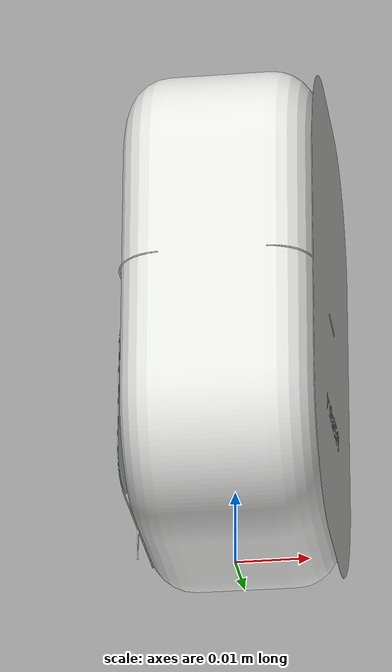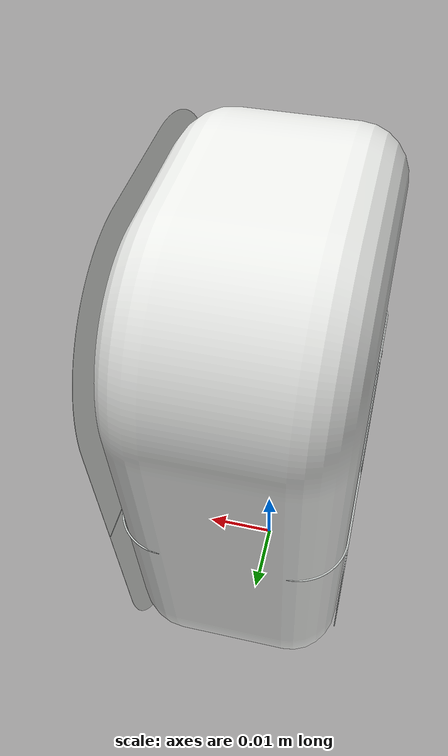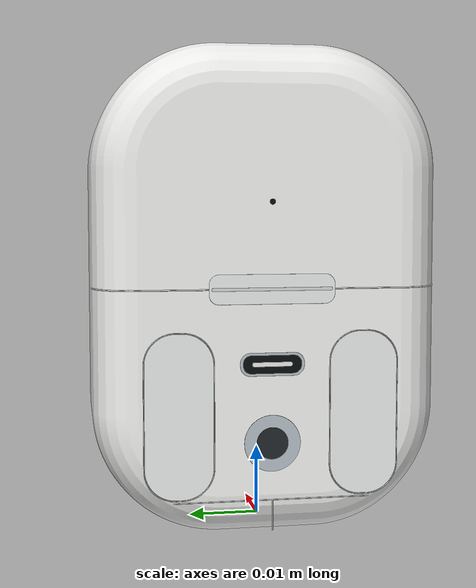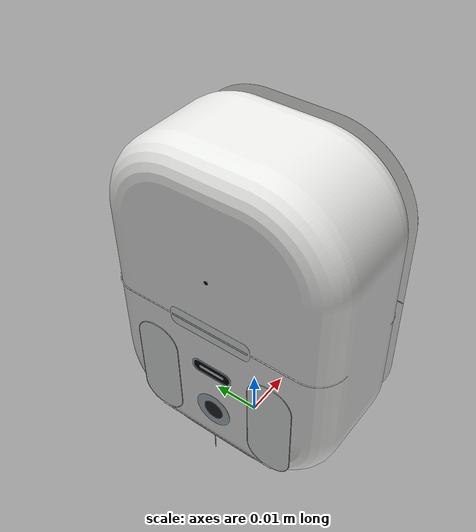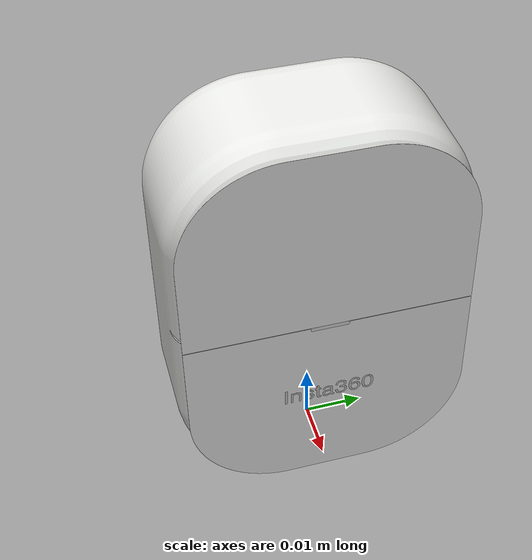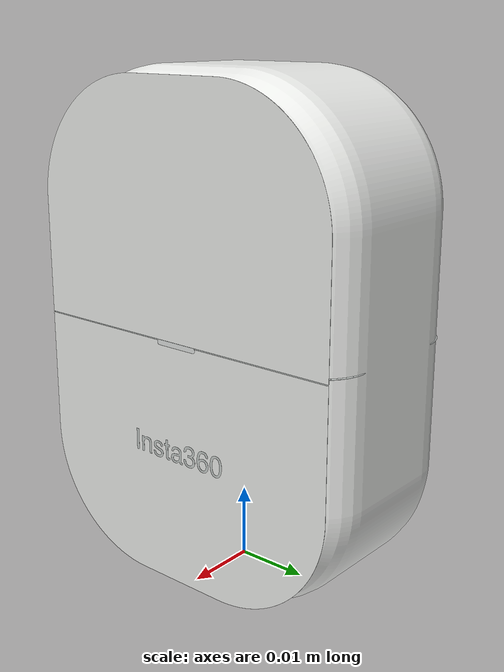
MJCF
<?xml version='1.0' encoding='utf-8'?>
<mujoco model="go2_charging_case">
  <!--Independent approximate geometry; fixed sites are geometric references, not calibrated optical frames.-->
  <compiler angle="radian" inertiafromgeom="false" strippath="false" />
  <option timestep="0.002" gravity="0 0 -9.81" />
  <asset>
    <mesh name="go2_charging_case_visual_mesh_0" file="../assets/meshes/visual/front_polymer.obj" scale="1 1 1" inertia="shell" />
    <mesh name="go2_charging_case_visual_mesh_1" file="../assets/meshes/visual/gasket.obj" scale="1 1 1" inertia="shell" />
    <mesh name="go2_charging_case_visual_mesh_2" file="../assets/meshes/visual/housing.obj" scale="1 1 1" inertia="shell" />
    <mesh name="go2_charging_case_visual_mesh_3" file="../assets/meshes/visual/rear_polymer.obj" scale="1 1 1" inertia="shell" />
    <mesh name="go2_charging_case_visual_mesh_4" file="../assets/meshes/visual/silver.obj" scale="1 1 1" inertia="shell" />
    <mesh name="go2_charging_case_visual_mesh_5" file="../assets/meshes/visual/slot.obj" scale="1 1 1" inertia="shell" />
    <mesh name="go2_charging_case_visual_mesh_6" file="../assets/meshes/visual/subtle_print.obj" scale="1 1 1" inertia="shell" />
    <mesh name="go2_charging_case_collision_mesh_0" file="../assets/meshes/collision/body.stl" scale="1 1 1" inertia="convex" />
  </asset>
  <worldbody>
    <body name="go2_charging_case_link">
      <inertial pos="0 0 0.03405" mass="0.0635" diaginertia="3.69880091667e-05 2.82567591667e-05 1.61633958333e-05" quat="1 0 0 0" />
      <geom name="go2_charging_case_visual_0" type="mesh" mesh="go2_charging_case_visual_mesh_0" pos="0 0 0" quat="1 0 0 0" density="0" group="2" contype="0" conaffinity="0" rgba="0.93 0.935 0.925 1" />
      <geom name="go2_charging_case_visual_1" type="mesh" mesh="go2_charging_case_visual_mesh_1" pos="0 0 0" quat="1 0 0 0" density="0" group="2" contype="0" conaffinity="0" rgba="0.12 0.135 0.145 1" />
      <geom name="go2_charging_case_visual_2" type="mesh" mesh="go2_charging_case_visual_mesh_2" pos="0 0 0" quat="1 0 0 0" density="0" group="2" contype="0" conaffinity="0" rgba="0.91 0.915 0.905 1" />
      <geom name="go2_charging_case_visual_3" type="mesh" mesh="go2_charging_case_visual_mesh_3" pos="0 0 0" quat="1 0 0 0" density="0" group="2" contype="0" conaffinity="0" rgba="0.87 0.885 0.875 1" />
      <geom name="go2_charging_case_visual_4" type="mesh" mesh="go2_charging_case_visual_mesh_4" pos="0 0 0" quat="1 0 0 0" density="0" group="2" contype="0" conaffinity="0" rgba="0.67 0.71 0.735 1" />
      <geom name="go2_charging_case_visual_5" type="mesh" mesh="go2_charging_case_visual_mesh_5" pos="0 0 0" quat="1 0 0 0" density="0" group="2" contype="0" conaffinity="0" rgba="0.025 0.033 0.039 1" />
      <geom name="go2_charging_case_visual_6" type="mesh" mesh="go2_charging_case_visual_mesh_6" pos="0 0 0" quat="1 0 0 0" density="0" group="2" contype="0" conaffinity="0" rgba="0.78 0.8 0.79 1" />
      <geom name="go2_charging_case_collision_0" type="mesh" mesh="go2_charging_case_collision_mesh_0" pos="0 0 0" quat="1 0 0 0" density="0" group="3" contype="1" conaffinity="1" rgba="0 0 0 0" />
      <site name="go2_charging_case_mount" pos="0 0 0" quat="1 0 0 0" type="sphere" size="0.001" group="4" rgba="0 0 0 0" />
    </body>
  </worldbody>
</mujoco>
